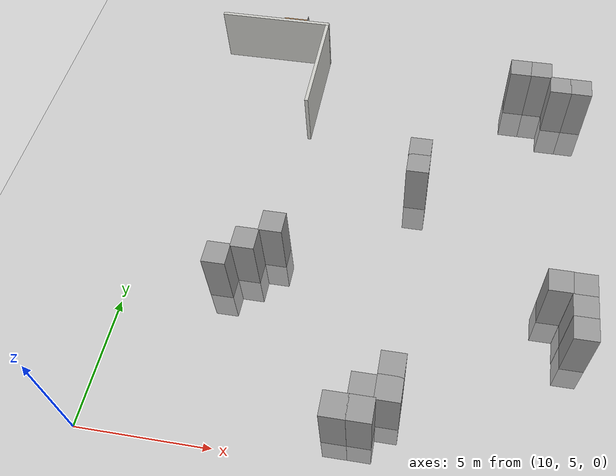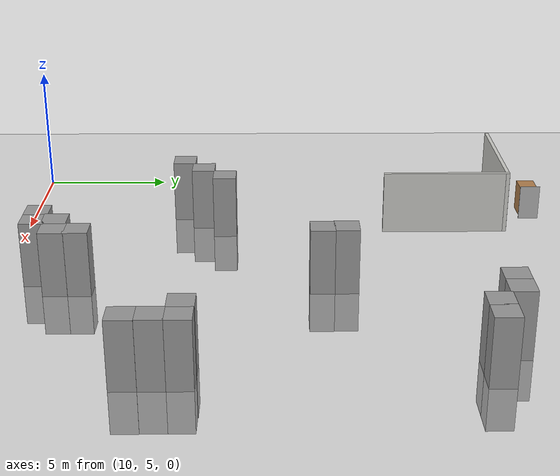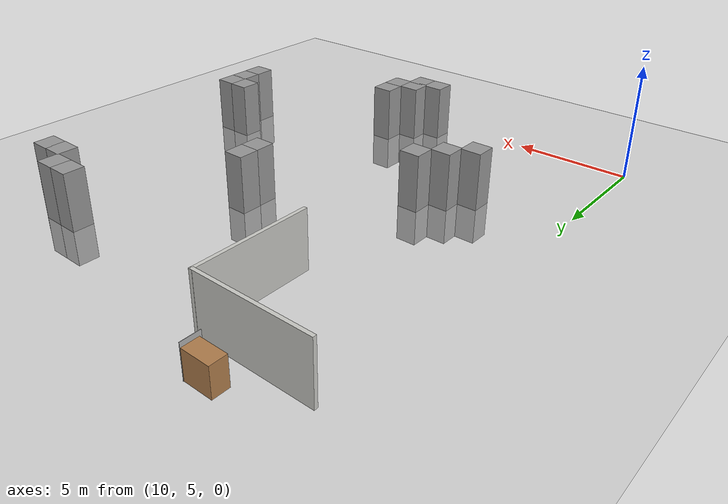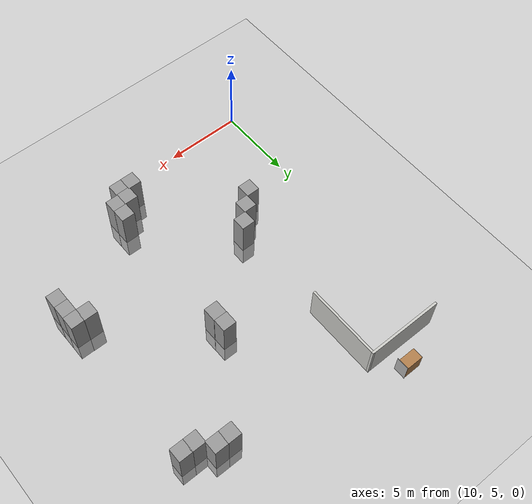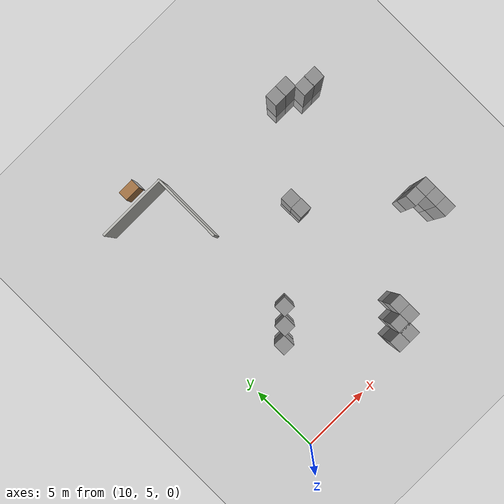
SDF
<sdf version="1.7">
 <world name="default">
  <model name="ground_plane">
   <static>1</static>
   <link name="link">
    <collision name="collision">
     <geometry><plane><normal>0 0 1</normal><size>100 100</size></plane></geometry>
     <surface><friction><ode><mu>100</mu><mu2>50</mu2></ode></friction></surface>
    </collision>
    <visual name="visual">
     <cast_shadows>0</cast_shadows>
     <geometry><plane><normal>0 0 1</normal><size>100 100</size></plane></geometry>
     <material>
      <script><uri>file://media/materials/scripts/gazebo.material</uri><name>Gazebo/Grey</name></script>
     </material>
    </visual>
   </link>
  </model>
  <model name="Untitled_clone">
   <link name="Wall_2">
    <pose>0 -2.2325 0 0 -0 0</pose>
    <visual name="Wall_2_Visual">
     <pose>0 0 1.25 0 -0 0</pose>
     <geometry><box><size>5 0.15 2.5</size></box></geometry>
     <material>
      <script><uri>file://media/materials/scripts/gazebo.material</uri><name>Gazebo/CeilingTiled</name></script>
      <ambient>1 1 1 1</ambient>
      <shader type="pixel"/>
     </material>
     <meta><layer>0</layer></meta>
    </visual>
    <collision name="Wall_2_Collision">
     <pose>0 0 1.25 0 -0 0</pose>
     <geometry><box><size>5 0.15 2.5</size></box></geometry>
     <surface>
      <friction>
       <ode><mu>1</mu><mu2>1</mu2><fdir1>0 0 0</fdir1><slip1>0</slip1><slip2>0</slip2></ode>
       <torsional>
        <coefficient>1</coefficient>
        <patch_radius>0</patch_radius>
        <surface_radius>0</surface_radius>
        <use_patch_radius>1</use_patch_radius>
        <ode><slip>0</slip></ode>
       </torsional>
      </friction>
      <bounce><restitution_coefficient>0</restitution_coefficient><threshold>1e+06</threshold></bounce>
      <contact>
       <collide_without_contact>0</collide_without_contact>
       <collide_without_contact_bitmask>1</collide_without_contact_bitmask>
       <collide_bitmask>1</collide_bitmask>
       <ode>
        <soft_cfm>0</soft_cfm>
        <soft_erp>0.2</soft_erp>
        <kp>1e+13</kp>
        <kd>1</kd>
        <max_vel>0.01</max_vel>
        <min_depth>0</min_depth>
       </ode>
       <bullet>
        <split_impulse>1</split_impulse>
        <split_impulse_penetration_threshold>-0.01</split_impulse_penetration_threshold>
        <soft_cfm>0</soft_cfm>
        <soft_erp>0.2</soft_erp>
        <kp>1e+13</kp>
        <kd>1</kd>
       </bullet>
      </contact>
     </surface>
    </collision>
   </link>
   <link name="Wall_2_clone_clone">
    <pose>2.42084 -4.65277 0 0 -0 1.57</pose>
    <inertial>
     <mass>1</mass>
     <inertia><ixx>1</ixx><ixy>0</ixy><ixz>0</ixz><iyy>1</iyy><iyz>0</iyz><izz>1</izz></inertia>
    </inertial>
    <visual name="Wall_2_Visual">
     <pose>0 0 1.25 0 -0 0</pose>
     <geometry><box><size>5 0.15 2.5</size></box></geometry>
     <material>
      <script><uri>file://media/materials/scripts/gazebo.material</uri><name>Gazebo/CeilingTiled</name></script>
      <ambient>1 1 1 1</ambient>
      <shader type="pixel"><normal_map>__default__</normal_map></shader>
      <diffuse>1 1 1 1</diffuse>
      <specular>0 0 0 1</specular>
      <emissive>0 0 0 1</emissive>
     </material>
     <meta><layer>0</layer></meta>
    </visual>
    <collision name="Wall_2_Collision">
     <pose>0 0 1.25 0 -0 0</pose>
     <geometry><box><size>5 0.15 2.5</size></box></geometry>
     <surface>
      <friction>
       <ode><mu>1</mu><mu2>1</mu2><fdir1>0 0 0</fdir1><slip1>0</slip1><slip2>0</slip2></ode>
       <torsional>
        <coefficient>1</coefficient>
        <patch_radius>0</patch_radius>
        <surface_radius>0</surface_radius>
        <use_patch_radius>1</use_patch_radius>
        <ode><slip>0</slip></ode>
       </torsional>
      </friction>
      <bounce><restitution_coefficient>0</restitution_coefficient><threshold>1e+06</threshold></bounce>
      <contact>
       <collide_without_contact>0</collide_without_contact>
       <collide_without_contact_bitmask>1</collide_without_contact_bitmask>
       <collide_bitmask>1</collide_bitmask>
       <ode>
        <soft_cfm>0</soft_cfm>
        <soft_erp>0.2</soft_erp>
        <kp>1e+13</kp>
        <kd>1</kd>
        <max_vel>0.01</max_vel>
        <min_depth>0</min_depth>
       </ode>
       <bullet>
        <split_impulse>1</split_impulse>
        <split_impulse_penetration_threshold>-0.01</split_impulse_penetration_threshold>
        <soft_cfm>0</soft_cfm>
        <soft_erp>0.2</soft_erp>
        <kp>1e+13</kp>
        <kd>1</kd>
       </bullet>
      </contact>
     </surface>
    </collision>
   </link>
   <static>1</static>
   <pose>13.092 26.4824 0 0 -0 0</pose>
  </model>
  <model name="unit_box_1_clone_0">
   <link name="link">
    <inertial>
     <mass>1</mass>
     <inertia>
      <ixx>0.166667</ixx>
      <ixy>0</ixy>
      <ixz>0</ixz>
      <iyy>0.166667</iyy>
      <iyz>0</iyz>
      <izz>0.166667</izz>
     </inertia>
    </inertial>
    <visual name="visual">
     <geometry><box><size>0.02 0.8 1.4</size></box></geometry>
     <material>
      <script><name>Gazebo/ShiHao</name><uri>file://media/materials/scripts/gazebo.material</uri></script>
      <shader type="pixel"><normal_map>__default__</normal_map></shader>
      <ambient>1 1 1 1</ambient>
      <diffuse>0.7 0.7 0.7 1</diffuse>
      <specular>0.01 0.01 0.01 1</specular>
      <emissive>0 0 0 1</emissive>
     </material>
    </visual>
    <collision name="collision">
     <geometry><box><size>0.02 0.8 1.4</size></box></geometry>
     <surface>
      <friction>
       <ode><mu>1</mu><mu2>1</mu2><fdir1>0 0 0</fdir1><slip1>0</slip1><slip2>0</slip2></ode>
       <torsional>
        <coefficient>1</coefficient>
        <patch_radius>0</patch_radius>
        <surface_radius>0</surface_radius>
        <use_patch_radius>1</use_patch_radius>
        <ode><slip>0</slip></ode>
       </torsional>
      </friction>
      <bounce><restitution_coefficient>0</restitution_coefficient><threshold>1e+06</threshold></bounce>
      <contact>
       <collide_without_contact>0</collide_without_contact>
       <collide_without_contact_bitmask>1</collide_without_contact_bitmask>
       <collide_bitmask>1</collide_bitmask>
       <ode>
        <soft_cfm>0</soft_cfm>
        <soft_erp>0.2</soft_erp>
        <kp>1e+13</kp>
        <kd>1</kd>
        <max_vel>0.01</max_vel>
        <min_depth>0</min_depth>
       </ode>
       <bullet>
        <split_impulse>1</split_impulse>
        <split_impulse_penetration_threshold>-0.01</split_impulse_penetration_threshold>
        <soft_cfm>0</soft_cfm>
        <soft_erp>0.2</soft_erp>
        <kp>1e+13</kp>
        <kd>1</kd>
       </bullet>
      </contact>
     </surface>
    </collision>
   </link>
   <static>0</static>
   <pose>14.2294 25.5003 0.699998 -5e-06 -4e-06 -0.000161</pose>
  </model>
  <model name="unit_box_0_clone">
   <link name="link">
    <inertial>
     <mass>1</mass>
     <inertia>
      <ixx>0.166667</ixx>
      <ixy>0</ixy>
      <ixz>0</ixz>
      <iyy>0.166667</iyy>
      <iyz>0</iyz>
      <izz>0.166667</izz>
     </inertia>
    </inertial>
    <visual name="visual">
     <geometry><box><size>1.2 0.7 1.2</size></box></geometry>
     <material>
      <script><uri>file://media/materials/scripts/gazebo.material</uri><name>Gazebo/Wood</name></script>
      <shader type="pixel"><normal_map>__default__</normal_map></shader>
      <ambient>1 1 1 1</ambient>
      <diffuse>0.7 0.7 0.7 1</diffuse>
      <specular>0.01 0.01 0.01 1</specular>
      <emissive>0 0 0 1</emissive>
     </material>
    </visual>
    <collision name="collision">
     <geometry><box><size>1.2 0.7 1.2</size></box></geometry>
     <surface>
      <friction>
       <ode><mu>1</mu><mu2>1</mu2><fdir1>0 0 0</fdir1><slip1>0</slip1><slip2>0</slip2></ode>
       <torsional>
        <coefficient>1</coefficient>
        <patch_radius>0</patch_radius>
        <surface_radius>0</surface_radius>
        <use_patch_radius>1</use_patch_radius>
        <ode><slip>0</slip></ode>
       </torsional>
      </friction>
      <bounce><restitution_coefficient>0</restitution_coefficient><threshold>1e+06</threshold></bounce>
      <contact>
       <collide_without_contact>0</collide_without_contact>
       <collide_without_contact_bitmask>1</collide_without_contact_bitmask>
       <collide_bitmask>1</collide_bitmask>
       <ode>
        <soft_cfm>0</soft_cfm>
        <soft_erp>0.2</soft_erp>
        <kp>1e+13</kp>
        <kd>1</kd>
        <max_vel>0.01</max_vel>
        <min_depth>0</min_depth>
       </ode>
       <bullet>
        <split_impulse>1</split_impulse>
        <split_impulse_penetration_threshold>-0.01</split_impulse_penetration_threshold>
        <soft_cfm>0</soft_cfm>
        <soft_erp>0.2</soft_erp>
        <kp>1e+13</kp>
        <kd>1</kd>
       </bullet>
      </contact>
     </surface>
    </collision>
   </link>
   <static>0</static>
   <pose>13.619 25.5346 0.600002 0 3e-06 -0.000144</pose>
  </model>
  <model name="unit_box">
   <link name="link_clone_0_clone_clone_3_clone_2_clone_1_clone">
    <inertial>
     <mass>1</mass>
     <inertia>
      <ixx>0.166667</ixx>
      <ixy>0</ixy>
      <ixz>0</ixz>
      <iyy>0.166667</iyy>
      <iyz>0</iyz>
      <izz>0.166667</izz>
     </inertia>
    </inertial>
    <pose>19.5699 23.4812 0 0 -0 0</pose>
    <visual name="visual">
     <geometry><box><size>0.9 0.9 4</size></box></geometry>
     <material>
      <script><name>Gazebo/Grey</name><uri>file://media/materials/scripts/gazebo.material</uri></script>
      <shader type="pixel"><normal_map>__default__</normal_map></shader>
      <ambient>0.3 0.3 0.3 1</ambient>
      <diffuse>0.7 0.7 0.7 1</diffuse>
      <specular>0.01 0.01 0.01 1</specular>
      <emissive>0 0 0 1</emissive>
     </material>
    </visual>
    <collision name="collision">
     <geometry><box><size>0.9 0.9 4</size></box></geometry>
     <surface>
      <friction>
       <ode><mu>1</mu><mu2>1</mu2><fdir1>0 0 0</fdir1><slip1>0</slip1><slip2>0</slip2></ode>
       <torsional>
        <coefficient>1</coefficient>
        <patch_radius>0</patch_radius>
        <surface_radius>0</surface_radius>
        <use_patch_radius>1</use_patch_radius>
        <ode><slip>0</slip></ode>
       </torsional>
      </friction>
      <bounce><restitution_coefficient>0</restitution_coefficient><threshold>1e+06</threshold></bounce>
      <contact>
       <collide_without_contact>0</collide_without_contact>
       <collide_without_contact_bitmask>1</collide_without_contact_bitmask>
       <collide_bitmask>1</collide_bitmask>
       <ode>
        <soft_cfm>0</soft_cfm>
        <soft_erp>0.2</soft_erp>
        <kp>1e+13</kp>
        <kd>1</kd>
        <max_vel>0.01</max_vel>
        <min_depth>0</min_depth>
       </ode>
       <bullet>
        <split_impulse>1</split_impulse>
        <split_impulse_penetration_threshold>-0.01</split_impulse_penetration_threshold>
        <soft_cfm>0</soft_cfm>
        <soft_erp>0.2</soft_erp>
        <kp>1e+13</kp>
        <kd>1</kd>
       </bullet>
      </contact>
     </surface>
    </collision>
   </link>
   <link name="link_clone_0_clone_clone_3_clone_2_clone_1_clone_0">
    <inertial>
     <mass>1</mass>
     <inertia>
      <ixx>0.166667</ixx>
      <ixy>0</ixy>
      <ixz>0</ixz>
      <iyy>0.166667</iyy>
      <iyz>0</iyz>
      <izz>0.166667</izz>
     </inertia>
    </inertial>
    <pose>18.7181 23.4797 0 0 -0 0</pose>
    <visual name="visual">
     <geometry><box><size>0.9 0.9 4</size></box></geometry>
     <material>
      <script><name>Gazebo/Grey</name><uri>file://media/materials/scripts/gazebo.material</uri></script>
      <shader type="pixel"><normal_map>__default__</normal_map></shader>
      <ambient>0.3 0.3 0.3 1</ambient>
      <diffuse>0.7 0.7 0.7 1</diffuse>
      <specular>0.01 0.01 0.01 1</specular>
      <emissive>0 0 0 1</emissive>
     </material>
    </visual>
    <collision name="collision">
     <geometry><box><size>0.9 0.9 4</size></box></geometry>
     <surface>
      <friction>
       <ode><mu>1</mu><mu2>1</mu2><fdir1>0 0 0</fdir1><slip1>0</slip1><slip2>0</slip2></ode>
       <torsional>
        <coefficient>1</coefficient>
        <patch_radius>0</patch_radius>
        <surface_radius>0</surface_radius>
        <use_patch_radius>1</use_patch_radius>
        <ode><slip>0</slip></ode>
       </torsional>
      </friction>
      <bounce><restitution_coefficient>0</restitution_coefficient><threshold>1e+06</threshold></bounce>
      <contact>
       <collide_without_contact>0</collide_without_contact>
       <collide_without_contact_bitmask>1</collide_without_contact_bitmask>
       <collide_bitmask>1</collide_bitmask>
       <ode>
        <soft_cfm>0</soft_cfm>
        <soft_erp>0.2</soft_erp>
        <kp>1e+13</kp>
        <kd>1</kd>
        <max_vel>0.01</max_vel>
        <min_depth>0</min_depth>
       </ode>
       <bullet>
        <split_impulse>1</split_impulse>
        <split_impulse_penetration_threshold>-0.01</split_impulse_penetration_threshold>
        <soft_cfm>0</soft_cfm>
        <soft_erp>0.2</soft_erp>
        <kp>1e+13</kp>
        <kd>1</kd>
       </bullet>
      </contact>
     </surface>
    </collision>
   </link>
   <link name="link_clone_0_clone_clone_3_clone_2_clone_1_clone_1">
    <inertial>
     <mass>1</mass>
     <inertia>
      <ixx>0.166667</ixx>
      <ixy>0</ixy>
      <ixz>0</ixz>
      <iyy>0.166667</iyy>
      <iyz>0</iyz>
      <izz>0.166667</izz>
     </inertia>
    </inertial>
    <pose>17.8601 24.3072 0 0 -0 0</pose>
    <visual name="visual">
     <geometry><box><size>0.9 0.9 4</size></box></geometry>
     <material>
      <script><name>Gazebo/Grey</name><uri>file://media/materials/scripts/gazebo.material</uri></script>
      <shader type="pixel"><normal_map>__default__</normal_map></shader>
      <ambient>0.3 0.3 0.3 1</ambient>
      <diffuse>0.7 0.7 0.7 1</diffuse>
      <specular>0.01 0.01 0.01 1</specular>
      <emissive>0 0 0 1</emissive>
     </material>
    </visual>
    <collision name="collision">
     <geometry><box><size>0.9 0.9 4</size></box></geometry>
     <surface>
      <friction>
       <ode><mu>1</mu><mu2>1</mu2><fdir1>0 0 0</fdir1><slip1>0</slip1><slip2>0</slip2></ode>
       <torsional>
        <coefficient>1</coefficient>
        <patch_radius>0</patch_radius>
        <surface_radius>0</surface_radius>
        <use_patch_radius>1</use_patch_radius>
        <ode><slip>0</slip></ode>
       </torsional>
      </friction>
      <bounce><restitution_coefficient>0</restitution_coefficient><threshold>1e+06</threshold></bounce>
      <contact>
       <collide_without_contact>0</collide_without_contact>
       <collide_without_contact_bitmask>1</collide_without_contact_bitmask>
       <collide_bitmask>1</collide_bitmask>
       <ode>
        <soft_cfm>0</soft_cfm>
        <soft_erp>0.2</soft_erp>
        <kp>1e+13</kp>
        <kd>1</kd>
        <max_vel>0.01</max_vel>
        <min_depth>0</min_depth>
       </ode>
       <bullet>
        <split_impulse>1</split_impulse>
        <split_impulse_penetration_threshold>-0.01</split_impulse_penetration_threshold>
        <soft_cfm>0</soft_cfm>
        <soft_erp>0.2</soft_erp>
        <kp>1e+13</kp>
        <kd>1</kd>
       </bullet>
      </contact>
     </surface>
    </collision>
   </link>
   <link name="link_clone_0_clone_clone_3_clone_2_clone_1_clone_2">
    <inertial>
     <mass>1</mass>
     <inertia>
      <ixx>0.166667</ixx>
      <ixy>0</ixy>
      <ixz>0</ixz>
      <iyy>0.166667</iyy>
      <iyz>0</iyz>
      <izz>0.166667</izz>
     </inertia>
    </inertial>
    <pose>16.9798 24.307 0 0 -0 0</pose>
    <visual name="visual">
     <geometry><box><size>0.9 0.9 4</size></box></geometry>
     <material>
      <script><name>Gazebo/Grey</name><uri>file://media/materials/scripts/gazebo.material</uri></script>
      <shader type="pixel"><normal_map>__default__</normal_map></shader>
      <ambient>0.3 0.3 0.3 1</ambient>
      <diffuse>0.7 0.7 0.7 1</diffuse>
      <specular>0.01 0.01 0.01 1</specular>
      <emissive>0 0 0 1</emissive>
     </material>
    </visual>
    <collision name="collision">
     <geometry><box><size>0.9 0.9 4</size></box></geometry>
     <surface>
      <friction>
       <ode><mu>1</mu><mu2>1</mu2><fdir1>0 0 0</fdir1><slip1>0</slip1><slip2>0</slip2></ode>
       <torsional>
        <coefficient>1</coefficient>
        <patch_radius>0</patch_radius>
        <surface_radius>0</surface_radius>
        <use_patch_radius>1</use_patch_radius>
        <ode><slip>0</slip></ode>
       </torsional>
      </friction>
      <bounce><restitution_coefficient>0</restitution_coefficient><threshold>1e+06</threshold></bounce>
      <contact>
       <collide_without_contact>0</collide_without_contact>
       <collide_without_contact_bitmask>1</collide_without_contact_bitmask>
       <collide_bitmask>1</collide_bitmask>
       <ode>
        <soft_cfm>0</soft_cfm>
        <soft_erp>0.2</soft_erp>
        <kp>1e+13</kp>
        <kd>1</kd>
        <max_vel>0.01</max_vel>
        <min_depth>0</min_depth>
       </ode>
       <bullet>
        <split_impulse>1</split_impulse>
        <split_impulse_penetration_threshold>-0.01</split_impulse_penetration_threshold>
        <soft_cfm>0</soft_cfm>
        <soft_erp>0.2</soft_erp>
        <kp>1e+13</kp>
        <kd>1</kd>
       </bullet>
      </contact>
     </surface>
    </collision>
   </link>
   <link name="link_clone_0_clone_clone_3_clone_2_clone_32">
    <inertial>
     <mass>1</mass>
     <inertia>
      <ixx>0.166667</ixx>
      <ixy>0</ixy>
      <ixz>0</ixz>
      <iyy>0.166667</iyy>
      <iyz>0</iyz>
      <izz>0.166667</izz>
     </inertia>
    </inertial>
    <pose>19.6438 11.8163 0 0 -0 0</pose>
    <visual name="visual">
     <geometry><box><size>0.9 0.9 4</size></box></geometry>
     <material>
      <script><name>Gazebo/Grey</name><uri>file://media/materials/scripts/gazebo.material</uri></script>
      <shader type="pixel"><normal_map>__default__</normal_map></shader>
      <ambient>0.3 0.3 0.3 1</ambient>
      <diffuse>0.7 0.7 0.7 1</diffuse>
      <specular>0.01 0.01 0.01 1</specular>
      <emissive>0 0 0 1</emissive>
     </material>
    </visual>
    <collision name="collision">
     <geometry><box><size>0.9 0.9 4</size></box></geometry>
     <surface>
      <friction>
       <ode><mu>1</mu><mu2>1</mu2><fdir1>0 0 0</fdir1><slip1>0</slip1><slip2>0</slip2></ode>
       <torsional>
        <coefficient>1</coefficient>
        <patch_radius>0</patch_radius>
        <surface_radius>0</surface_radius>
        <use_patch_radius>1</use_patch_radius>
        <ode><slip>0</slip></ode>
       </torsional>
      </friction>
      <bounce><restitution_coefficient>0</restitution_coefficient><threshold>1e+06</threshold></bounce>
      <contact>
       <collide_without_contact>0</collide_without_contact>
       <collide_without_contact_bitmask>1</collide_without_contact_bitmask>
       <collide_bitmask>1</collide_bitmask>
       <ode>
        <soft_cfm>0</soft_cfm>
        <soft_erp>0.2</soft_erp>
        <kp>1e+13</kp>
        <kd>1</kd>
        <max_vel>0.01</max_vel>
        <min_depth>0</min_depth>
       </ode>
       <bullet>
        <split_impulse>1</split_impulse>
        <split_impulse_penetration_threshold>-0.01</split_impulse_penetration_threshold>
        <soft_cfm>0</soft_cfm>
        <soft_erp>0.2</soft_erp>
        <kp>1e+13</kp>
        <kd>1</kd>
       </bullet>
      </contact>
     </surface>
    </collision>
   </link>
   <link name="link_clone_0_clone_clone_3_clone_2_clone_33">
    <inertial>
     <mass>1</mass>
     <inertia>
      <ixx>0.166667</ixx>
      <ixy>0</ixy>
      <ixz>0</ixz>
      <iyy>0.166667</iyy>
      <iyz>0</iyz>
      <izz>0.166667</izz>
     </inertia>
    </inertial>
    <pose>11.5534 7.77866 0 0 -0 0</pose>
    <visual name="visual">
     <geometry><box><size>0.9 0.9 4</size></box></geometry>
     <material>
      <script><name>Gazebo/Grey</name><uri>file://media/materials/scripts/gazebo.material</uri></script>
      <shader type="pixel"><normal_map>__default__</normal_map></shader>
      <ambient>0.3 0.3 0.3 1</ambient>
      <diffuse>0.7 0.7 0.7 1</diffuse>
      <specular>0.01 0.01 0.01 1</specular>
      <emissive>0 0 0 1</emissive>
     </material>
    </visual>
    <collision name="collision">
     <geometry><box><size>0.9 0.9 4</size></box></geometry>
     <surface>
      <friction>
       <ode><mu>1</mu><mu2>1</mu2><fdir1>0 0 0</fdir1><slip1>0</slip1><slip2>0</slip2></ode>
       <torsional>
        <coefficient>1</coefficient>
        <patch_radius>0</patch_radius>
        <surface_radius>0</surface_radius>
        <use_patch_radius>1</use_patch_radius>
        <ode><slip>0</slip></ode>
       </torsional>
      </friction>
      <bounce><restitution_coefficient>0</restitution_coefficient><threshold>1e+06</threshold></bounce>
      <contact>
       <collide_without_contact>0</collide_without_contact>
       <collide_without_contact_bitmask>1</collide_without_contact_bitmask>
       <collide_bitmask>1</collide_bitmask>
       <ode>
        <soft_cfm>0</soft_cfm>
        <soft_erp>0.2</soft_erp>
        <kp>1e+13</kp>
        <kd>1</kd>
        <max_vel>0.01</max_vel>
        <min_depth>0</min_depth>
       </ode>
       <bullet>
        <split_impulse>1</split_impulse>
        <split_impulse_penetration_threshold>-0.01</split_impulse_penetration_threshold>
        <soft_cfm>0</soft_cfm>
        <soft_erp>0.2</soft_erp>
        <kp>1e+13</kp>
        <kd>1</kd>
       </bullet>
      </contact>
     </surface>
    </collision>
   </link>
   <link name="link_clone_0_clone_clone_3_clone_2_clone_34">
    <inertial>
     <mass>1</mass>
     <inertia>
      <ixx>0.166667</ixx>
      <ixy>0</ixy>
      <ixz>0</ixz>
      <iyy>0.166667</iyy>
      <iyz>0</iyz>
      <izz>0.166667</izz>
     </inertia>
    </inertial>
    <pose>12.4188 7.78202 0 0 -0 0</pose>
    <visual name="visual">
     <geometry><box><size>0.9 0.9 4</size></box></geometry>
     <material>
      <script><name>Gazebo/Grey</name><uri>file://media/materials/scripts/gazebo.material</uri></script>
      <shader type="pixel"><normal_map>__default__</normal_map></shader>
      <ambient>0.3 0.3 0.3 1</ambient>
      <diffuse>0.7 0.7 0.7 1</diffuse>
      <specular>0.01 0.01 0.01 1</specular>
      <emissive>0 0 0 1</emissive>
     </material>
    </visual>
    <collision name="collision">
     <geometry><box><size>0.9 0.9 4</size></box></geometry>
     <surface>
      <friction>
       <ode><mu>1</mu><mu2>1</mu2><fdir1>0 0 0</fdir1><slip1>0</slip1><slip2>0</slip2></ode>
       <torsional>
        <coefficient>1</coefficient>
        <patch_radius>0</patch_radius>
        <surface_radius>0</surface_radius>
        <use_patch_radius>1</use_patch_radius>
        <ode><slip>0</slip></ode>
       </torsional>
      </friction>
      <bounce><restitution_coefficient>0</restitution_coefficient><threshold>1e+06</threshold></bounce>
      <contact>
       <collide_without_contact>0</collide_without_contact>
       <collide_without_contact_bitmask>1</collide_without_contact_bitmask>
       <collide_bitmask>1</collide_bitmask>
       <ode>
        <soft_cfm>0</soft_cfm>
        <soft_erp>0.2</soft_erp>
        <kp>1e+13</kp>
        <kd>1</kd>
        <max_vel>0.01</max_vel>
        <min_depth>0</min_depth>
       </ode>
       <bullet>
        <split_impulse>1</split_impulse>
        <split_impulse_penetration_threshold>-0.01</split_impulse_penetration_threshold>
        <soft_cfm>0</soft_cfm>
        <soft_erp>0.2</soft_erp>
        <kp>1e+13</kp>
        <kd>1</kd>
       </bullet>
      </contact>
     </surface>
    </collision>
   </link>
   <link name="link_clone_0_clone_clone_3_clone_2_clone_36">
    <inertial>
     <mass>1</mass>
     <inertia>
      <ixx>0.166667</ixx>
      <ixy>0</ixy>
      <ixz>0</ixz>
      <iyy>0.166667</iyy>
      <iyz>0</iyz>
      <izz>0.166667</izz>
     </inertia>
    </inertial>
    <pose>13.2399 8.61339 0 0 -0 0</pose>
    <visual name="visual">
     <geometry><box><size>0.9 0.9 4</size></box></geometry>
     <material>
      <script><name>Gazebo/Grey</name><uri>file://media/materials/scripts/gazebo.material</uri></script>
      <shader type="pixel"><normal_map>__default__</normal_map></shader>
      <ambient>0.3 0.3 0.3 1</ambient>
      <diffuse>0.7 0.7 0.7 1</diffuse>
      <specular>0.01 0.01 0.01 1</specular>
      <emissive>0 0 0 1</emissive>
     </material>
    </visual>
    <collision name="collision">
     <geometry><box><size>0.9 0.9 4</size></box></geometry>
     <surface>
      <friction>
       <ode><mu>1</mu><mu2>1</mu2><fdir1>0 0 0</fdir1><slip1>0</slip1><slip2>0</slip2></ode>
       <torsional>
        <coefficient>1</coefficient>
        <patch_radius>0</patch_radius>
        <surface_radius>0</surface_radius>
        <use_patch_radius>1</use_patch_radius>
        <ode><slip>0</slip></ode>
       </torsional>
      </friction>
      <bounce><restitution_coefficient>0</restitution_coefficient><threshold>1e+06</threshold></bounce>
      <contact>
       <collide_without_contact>0</collide_without_contact>
       <collide_without_contact_bitmask>1</collide_without_contact_bitmask>
       <collide_bitmask>1</collide_bitmask>
       <ode>
        <soft_cfm>0</soft_cfm>
        <soft_erp>0.2</soft_erp>
        <kp>1e+13</kp>
        <kd>1</kd>
        <max_vel>0.01</max_vel>
        <min_depth>0</min_depth>
       </ode>
       <bullet>
        <split_impulse>1</split_impulse>
        <split_impulse_penetration_threshold>-0.01</split_impulse_penetration_threshold>
        <soft_cfm>0</soft_cfm>
        <soft_erp>0.2</soft_erp>
        <kp>1e+13</kp>
        <kd>1</kd>
       </bullet>
      </contact>
     </surface>
    </collision>
   </link>
   <link name="link_clone_0_clone_clone_3_clone_2_clone_37">
    <inertial>
     <mass>1</mass>
     <inertia>
      <ixx>0.166667</ixx>
      <ixy>0</ixy>
      <ixz>0</ixz>
      <iyy>0.166667</iyy>
      <iyz>0</iyz>
      <izz>0.166667</izz>
     </inertia>
    </inertial>
    <pose>13.2375 9.46863 0 0 -0 0</pose>
    <visual name="visual">
     <geometry><box><size>0.9 0.9 4</size></box></geometry>
     <material>
      <script><name>Gazebo/Grey</name><uri>file://media/materials/scripts/gazebo.material</uri></script>
      <shader type="pixel"><normal_map>__default__</normal_map></shader>
      <ambient>0.3 0.3 0.3 1</ambient>
      <diffuse>0.7 0.7 0.7 1</diffuse>
      <specular>0.01 0.01 0.01 1</specular>
      <emissive>0 0 0 1</emissive>
     </material>
    </visual>
    <collision name="collision">
     <geometry><box><size>0.9 0.9 4</size></box></geometry>
     <surface>
      <friction>
       <ode><mu>1</mu><mu2>1</mu2><fdir1>0 0 0</fdir1><slip1>0</slip1><slip2>0</slip2></ode>
       <torsional>
        <coefficient>1</coefficient>
        <patch_radius>0</patch_radius>
        <surface_radius>0</surface_radius>
        <use_patch_radius>1</use_patch_radius>
        <ode><slip>0</slip></ode>
       </torsional>
      </friction>
      <bounce><restitution_coefficient>0</restitution_coefficient><threshold>1e+06</threshold></bounce>
      <contact>
       <collide_without_contact>0</collide_without_contact>
       <collide_without_contact_bitmask>1</collide_without_contact_bitmask>
       <collide_bitmask>1</collide_bitmask>
       <ode>
        <soft_cfm>0</soft_cfm>
        <soft_erp>0.2</soft_erp>
        <kp>1e+13</kp>
        <kd>1</kd>
        <max_vel>0.01</max_vel>
        <min_depth>0</min_depth>
       </ode>
       <bullet>
        <split_impulse>1</split_impulse>
        <split_impulse_penetration_threshold>-0.01</split_impulse_penetration_threshold>
        <soft_cfm>0</soft_cfm>
        <soft_erp>0.2</soft_erp>
        <kp>1e+13</kp>
        <kd>1</kd>
       </bullet>
      </contact>
     </surface>
    </collision>
   </link>
   <link name="link_clone_0_clone_clone_3_clone_2_clone_38">
    <inertial>
     <mass>1</mass>
     <inertia>
      <ixx>0.166667</ixx>
      <ixy>0</ixy>
      <ixz>0</ixz>
      <iyy>0.166667</iyy>
      <iyz>0</iyz>
      <izz>0.166667</izz>
     </inertia>
    </inertial>
    <pose>12.3724 8.56503 0 0 -0 0</pose>
    <visual name="visual">
     <geometry><box><size>0.9 0.9 4</size></box></geometry>
     <material>
      <script><name>Gazebo/Grey</name><uri>file://media/materials/scripts/gazebo.material</uri></script>
      <shader type="pixel"><normal_map>__default__</normal_map></shader>
      <ambient>0.3 0.3 0.3 1</ambient>
      <diffuse>0.7 0.7 0.7 1</diffuse>
      <specular>0.01 0.01 0.01 1</specular>
      <emissive>0 0 0 1</emissive>
     </material>
    </visual>
    <collision name="collision">
     <geometry><box><size>0.9 0.9 4</size></box></geometry>
     <surface>
      <friction>
       <ode><mu>1</mu><mu2>1</mu2><fdir1>0 0 0</fdir1><slip1>0</slip1><slip2>0</slip2></ode>
       <torsional>
        <coefficient>1</coefficient>
        <patch_radius>0</patch_radius>
        <surface_radius>0</surface_radius>
        <use_patch_radius>1</use_patch_radius>
        <ode><slip>0</slip></ode>
       </torsional>
      </friction>
      <bounce><restitution_coefficient>0</restitution_coefficient><threshold>1e+06</threshold></bounce>
      <contact>
       <collide_without_contact>0</collide_without_contact>
       <collide_without_contact_bitmask>1</collide_without_contact_bitmask>
       <collide_bitmask>1</collide_bitmask>
       <ode>
        <soft_cfm>0</soft_cfm>
        <soft_erp>0.2</soft_erp>
        <kp>1e+13</kp>
        <kd>1</kd>
        <max_vel>0.01</max_vel>
        <min_depth>0</min_depth>
       </ode>
       <bullet>
        <split_impulse>1</split_impulse>
        <split_impulse_penetration_threshold>-0.01</split_impulse_penetration_threshold>
        <soft_cfm>0</soft_cfm>
        <soft_erp>0.2</soft_erp>
        <kp>1e+13</kp>
        <kd>1</kd>
       </bullet>
      </contact>
     </surface>
    </collision>
   </link>
   <link name="link_clone_0_clone_clone_3_clone_2_clone_39">
    <inertial>
     <mass>1</mass>
     <inertia>
      <ixx>0.166667</ixx>
      <ixy>0</ixy>
      <ixz>0</ixz>
      <iyy>0.166667</iyy>
      <iyz>0</iyz>
      <izz>0.166667</izz>
     </inertia>
    </inertial>
    <pose>19.6362 12.7063 0 0 -0 0</pose>
    <visual name="visual">
     <geometry><box><size>0.9 0.9 4</size></box></geometry>
     <material>
      <script><name>Gazebo/Grey</name><uri>file://media/materials/scripts/gazebo.material</uri></script>
      <shader type="pixel"><normal_map>__default__</normal_map></shader>
      <ambient>0.3 0.3 0.3 1</ambient>
      <diffuse>0.7 0.7 0.7 1</diffuse>
      <specular>0.01 0.01 0.01 1</specular>
      <emissive>0 0 0 1</emissive>
     </material>
    </visual>
    <collision name="collision">
     <geometry><box><size>0.9 0.9 4</size></box></geometry>
     <surface>
      <friction>
       <ode><mu>1</mu><mu2>1</mu2><fdir1>0 0 0</fdir1><slip1>0</slip1><slip2>0</slip2></ode>
       <torsional>
        <coefficient>1</coefficient>
        <patch_radius>0</patch_radius>
        <surface_radius>0</surface_radius>
        <use_patch_radius>1</use_patch_radius>
        <ode><slip>0</slip></ode>
       </torsional>
      </friction>
      <bounce><restitution_coefficient>0</restitution_coefficient><threshold>1e+06</threshold></bounce>
      <contact>
       <collide_without_contact>0</collide_without_contact>
       <collide_without_contact_bitmask>1</collide_without_contact_bitmask>
       <collide_bitmask>1</collide_bitmask>
       <ode>
        <soft_cfm>0</soft_cfm>
        <soft_erp>0.2</soft_erp>
        <kp>1e+13</kp>
        <kd>1</kd>
        <max_vel>0.01</max_vel>
        <min_depth>0</min_depth>
       </ode>
       <bullet>
        <split_impulse>1</split_impulse>
        <split_impulse_penetration_threshold>-0.01</split_impulse_penetration_threshold>
        <soft_cfm>0</soft_cfm>
        <soft_erp>0.2</soft_erp>
        <kp>1e+13</kp>
        <kd>1</kd>
       </bullet>
      </contact>
     </surface>
    </collision>
   </link>
   <link name="link_clone_0_clone_clone_3_clone_2_clone_40">
    <inertial>
     <mass>1</mass>
     <inertia>
      <ixx>0.166667</ixx>
      <ixy>0</ixy>
      <ixz>0</ixz>
      <iyy>0.166667</iyy>
      <iyz>0</iyz>
      <izz>0.166667</izz>
     </inertia>
    </inertial>
    <pose>19.6349 13.5789 0 0 -0 0</pose>
    <visual name="visual">
     <geometry><box><size>0.9 0.9 4</size></box></geometry>
     <material>
      <script><name>Gazebo/Grey</name><uri>file://media/materials/scripts/gazebo.material</uri></script>
      <shader type="pixel"><normal_map>__default__</normal_map></shader>
      <ambient>0.3 0.3 0.3 1</ambient>
      <diffuse>0.7 0.7 0.7 1</diffuse>
      <specular>0.01 0.01 0.01 1</specular>
      <emissive>0 0 0 1</emissive>
     </material>
    </visual>
    <collision name="collision">
     <geometry><box><size>0.9 0.9 4</size></box></geometry>
     <surface>
      <friction>
       <ode><mu>1</mu><mu2>1</mu2><fdir1>0 0 0</fdir1><slip1>0</slip1><slip2>0</slip2></ode>
       <torsional>
        <coefficient>1</coefficient>
        <patch_radius>0</patch_radius>
        <surface_radius>0</surface_radius>
        <use_patch_radius>1</use_patch_radius>
        <ode><slip>0</slip></ode>
       </torsional>
      </friction>
      <bounce><restitution_coefficient>0</restitution_coefficient><threshold>1e+06</threshold></bounce>
      <contact>
       <collide_without_contact>0</collide_without_contact>
       <collide_without_contact_bitmask>1</collide_without_contact_bitmask>
       <collide_bitmask>1</collide_bitmask>
       <ode>
        <soft_cfm>0</soft_cfm>
        <soft_erp>0.2</soft_erp>
        <kp>1e+13</kp>
        <kd>1</kd>
        <max_vel>0.01</max_vel>
        <min_depth>0</min_depth>
       </ode>
       <bullet>
        <split_impulse>1</split_impulse>
        <split_impulse_penetration_threshold>-0.01</split_impulse_penetration_threshold>
        <soft_cfm>0</soft_cfm>
        <soft_erp>0.2</soft_erp>
        <kp>1e+13</kp>
        <kd>1</kd>
       </bullet>
      </contact>
     </surface>
    </collision>
   </link>
   <link name="link_clone_0_clone_clone_3_clone_2_clone_42">
    <inertial>
     <mass>1</mass>
     <inertia>
      <ixx>0.166667</ixx>
      <ixy>0</ixy>
      <ixz>0</ixz>
      <iyy>0.166667</iyy>
      <iyz>0</iyz>
      <izz>0.166667</izz>
     </inertia>
    </inertial>
    <pose>18.7644 13.5939 0 0 -0 0</pose>
    <visual name="visual">
     <geometry><box><size>0.9 0.9 4</size></box></geometry>
     <material>
      <script><name>Gazebo/Grey</name><uri>file://media/materials/scripts/gazebo.material</uri></script>
      <shader type="pixel"><normal_map>__default__</normal_map></shader>
      <ambient>0.3 0.3 0.3 1</ambient>
      <diffuse>0.7 0.7 0.7 1</diffuse>
      <specular>0.01 0.01 0.01 1</specular>
      <emissive>0 0 0 1</emissive>
     </material>
    </visual>
    <collision name="collision">
     <geometry><box><size>0.9 0.9 4</size></box></geometry>
     <surface>
      <friction>
       <ode><mu>1</mu><mu2>1</mu2><fdir1>0 0 0</fdir1><slip1>0</slip1><slip2>0</slip2></ode>
       <torsional>
        <coefficient>1</coefficient>
        <patch_radius>0</patch_radius>
        <surface_radius>0</surface_radius>
        <use_patch_radius>1</use_patch_radius>
        <ode><slip>0</slip></ode>
       </torsional>
      </friction>
      <bounce><restitution_coefficient>0</restitution_coefficient><threshold>1e+06</threshold></bounce>
      <contact>
       <collide_without_contact>0</collide_without_contact>
       <collide_without_contact_bitmask>1</collide_without_contact_bitmask>
       <collide_bitmask>1</collide_bitmask>
       <ode>
        <soft_cfm>0</soft_cfm>
        <soft_erp>0.2</soft_erp>
        <kp>1e+13</kp>
        <kd>1</kd>
        <max_vel>0.01</max_vel>
        <min_depth>0</min_depth>
       </ode>
       <bullet>
        <split_impulse>1</split_impulse>
        <split_impulse_penetration_threshold>-0.01</split_impulse_penetration_threshold>
        <soft_cfm>0</soft_cfm>
        <soft_erp>0.2</soft_erp>
        <kp>1e+13</kp>
        <kd>1</kd>
       </bullet>
      </contact>
     </surface>
    </collision>
   </link>
   <link name="link_clone_0_clone_clone_3_clone_2_clone_44">
    <inertial>
     <mass>1</mass>
     <inertia>
      <ixx>0.166667</ixx>
      <ixy>0</ixy>
      <ixz>0</ixz>
      <iyy>0.166667</iyy>
      <iyz>0</iyz>
      <izz>0.166667</izz>
     </inertia>
    </inertial>
    <pose>13.1153 18.1869 0 0 -0 0</pose>
    <visual name="visual">
     <geometry><box><size>0.9 0.9 4</size></box></geometry>
     <material>
      <script><name>Gazebo/Grey</name><uri>file://media/materials/scripts/gazebo.material</uri></script>
      <shader type="pixel"><normal_map>__default__</normal_map></shader>
      <ambient>0.3 0.3 0.3 1</ambient>
      <diffuse>0.7 0.7 0.7 1</diffuse>
      <specular>0.01 0.01 0.01 1</specular>
      <emissive>0 0 0 1</emissive>
     </material>
    </visual>
    <collision name="collision">
     <geometry><box><size>0.9 0.9 4</size></box></geometry>
     <surface>
      <friction>
       <ode><mu>1</mu><mu2>1</mu2><fdir1>0 0 0</fdir1><slip1>0</slip1><slip2>0</slip2></ode>
       <torsional>
        <coefficient>1</coefficient>
        <patch_radius>0</patch_radius>
        <surface_radius>0</surface_radius>
        <use_patch_radius>1</use_patch_radius>
        <ode><slip>0</slip></ode>
       </torsional>
      </friction>
      <bounce><restitution_coefficient>0</restitution_coefficient><threshold>1e+06</threshold></bounce>
      <contact>
       <collide_without_contact>0</collide_without_contact>
       <collide_without_contact_bitmask>1</collide_without_contact_bitmask>
       <collide_bitmask>1</collide_bitmask>
       <ode>
        <soft_cfm>0</soft_cfm>
        <soft_erp>0.2</soft_erp>
        <kp>1e+13</kp>
        <kd>1</kd>
        <max_vel>0.01</max_vel>
        <min_depth>0</min_depth>
       </ode>
       <bullet>
        <split_impulse>1</split_impulse>
        <split_impulse_penetration_threshold>-0.01</split_impulse_penetration_threshold>
        <soft_cfm>0</soft_cfm>
        <soft_erp>0.2</soft_erp>
        <kp>1e+13</kp>
        <kd>1</kd>
       </bullet>
      </contact>
     </surface>
    </collision>
   </link>
   <link name="link_clone_0_clone_clone_3_clone_2_clone_45">
    <inertial>
     <mass>1</mass>
     <inertia>
      <ixx>0.166667</ixx>
      <ixy>0</ixy>
      <ixz>0</ixz>
      <iyy>0.166667</iyy>
      <iyz>0</iyz>
      <izz>0.166667</izz>
     </inertia>
    </inertial>
    <pose>13.1006 19.0523 0 0 -0 0</pose>
    <visual name="visual">
     <geometry><box><size>0.9 0.9 4</size></box></geometry>
     <material>
      <script><name>Gazebo/Grey</name><uri>file://media/materials/scripts/gazebo.material</uri></script>
      <shader type="pixel"><normal_map>__default__</normal_map></shader>
      <ambient>0.3 0.3 0.3 1</ambient>
      <diffuse>0.7 0.7 0.7 1</diffuse>
      <specular>0.01 0.01 0.01 1</specular>
      <emissive>0 0 0 1</emissive>
     </material>
    </visual>
    <collision name="collision">
     <geometry><box><size>0.9 0.9 4</size></box></geometry>
     <surface>
      <friction>
       <ode><mu>1</mu><mu2>1</mu2><fdir1>0 0 0</fdir1><slip1>0</slip1><slip2>0</slip2></ode>
       <torsional>
        <coefficient>1</coefficient>
        <patch_radius>0</patch_radius>
        <surface_radius>0</surface_radius>
        <use_patch_radius>1</use_patch_radius>
        <ode><slip>0</slip></ode>
       </torsional>
      </friction>
      <bounce><restitution_coefficient>0</restitution_coefficient><threshold>1e+06</threshold></bounce>
      <contact>
       <collide_without_contact>0</collide_without_contact>
       <collide_without_contact_bitmask>1</collide_without_contact_bitmask>
       <collide_bitmask>1</collide_bitmask>
       <ode>
        <soft_cfm>0</soft_cfm>
        <soft_erp>0.2</soft_erp>
        <kp>1e+13</kp>
        <kd>1</kd>
        <max_vel>0.01</max_vel>
        <min_depth>0</min_depth>
       </ode>
       <bullet>
        <split_impulse>1</split_impulse>
        <split_impulse_penetration_threshold>-0.01</split_impulse_penetration_threshold>
        <soft_cfm>0</soft_cfm>
        <soft_erp>0.2</soft_erp>
        <kp>1e+13</kp>
        <kd>1</kd>
       </bullet>
      </contact>
     </surface>
    </collision>
   </link>
   <link name="link_clone_0_clone_clone_3_clone_2_clone_54">
    <inertial>
     <mass>1</mass>
     <inertia>
      <ixx>0.166667</ixx>
      <ixy>0</ixy>
      <ixz>0</ixz>
      <iyy>0.166667</iyy>
      <iyz>0</iyz>
      <izz>0.166667</izz>
     </inertia>
    </inertial>
    <pose>6.24208 12.8125 0 0 -0 0</pose>
    <visual name="visual">
     <geometry><box><size>0.9 0.9 4</size></box></geometry>
     <material>
      <script><name>Gazebo/Grey</name><uri>file://media/materials/scripts/gazebo.material</uri></script>
      <shader type="pixel"><normal_map>__default__</normal_map></shader>
      <ambient>0.3 0.3 0.3 1</ambient>
      <diffuse>0.7 0.7 0.7 1</diffuse>
      <specular>0.01 0.01 0.01 1</specular>
      <emissive>0 0 0 1</emissive>
     </material>
    </visual>
    <collision name="collision">
     <geometry><box><size>0.9 0.9 4</size></box></geometry>
     <surface>
      <friction>
       <ode><mu>1</mu><mu2>1</mu2><fdir1>0 0 0</fdir1><slip1>0</slip1><slip2>0</slip2></ode>
       <torsional>
        <coefficient>1</coefficient>
        <patch_radius>0</patch_radius>
        <surface_radius>0</surface_radius>
        <use_patch_radius>1</use_patch_radius>
        <ode><slip>0</slip></ode>
       </torsional>
      </friction>
      <bounce><restitution_coefficient>0</restitution_coefficient><threshold>1e+06</threshold></bounce>
      <contact>
       <collide_without_contact>0</collide_without_contact>
       <collide_without_contact_bitmask>1</collide_without_contact_bitmask>
       <collide_bitmask>1</collide_bitmask>
       <ode>
        <soft_cfm>0</soft_cfm>
        <soft_erp>0.2</soft_erp>
        <kp>1e+13</kp>
        <kd>1</kd>
        <max_vel>0.01</max_vel>
        <min_depth>0</min_depth>
       </ode>
       <bullet>
        <split_impulse>1</split_impulse>
        <split_impulse_penetration_threshold>-0.01</split_impulse_penetration_threshold>
        <soft_cfm>0</soft_cfm>
        <soft_erp>0.2</soft_erp>
        <kp>1e+13</kp>
        <kd>1</kd>
       </bullet>
      </contact>
     </surface>
    </collision>
   </link>
   <link name="link_clone_0_clone_clone_3_clone_2_clone_55">
    <inertial>
     <mass>1</mass>
     <inertia>
      <ixx>0.166667</ixx>
      <ixy>0</ixy>
      <ixz>0</ixz>
      <iyy>0.166667</iyy>
      <iyz>0</iyz>
      <izz>0.166667</izz>
     </inertia>
    </inertial>
    <pose>7.11895 13.6193 0 0 -0 0</pose>
    <visual name="visual">
     <geometry><box><size>0.9 0.9 4</size></box></geometry>
     <material>
      <script><name>Gazebo/Grey</name><uri>file://media/materials/scripts/gazebo.material</uri></script>
      <shader type="pixel"><normal_map>__default__</normal_map></shader>
      <ambient>0.3 0.3 0.3 1</ambient>
      <diffuse>0.7 0.7 0.7 1</diffuse>
      <specular>0.01 0.01 0.01 1</specular>
      <emissive>0 0 0 1</emissive>
     </material>
    </visual>
    <collision name="collision">
     <geometry><box><size>0.9 0.9 4</size></box></geometry>
     <surface>
      <friction>
       <ode><mu>1</mu><mu2>1</mu2><fdir1>0 0 0</fdir1><slip1>0</slip1><slip2>0</slip2></ode>
       <torsional>
        <coefficient>1</coefficient>
        <patch_radius>0</patch_radius>
        <surface_radius>0</surface_radius>
        <use_patch_radius>1</use_patch_radius>
        <ode><slip>0</slip></ode>
       </torsional>
      </friction>
      <bounce><restitution_coefficient>0</restitution_coefficient><threshold>1e+06</threshold></bounce>
      <contact>
       <collide_without_contact>0</collide_without_contact>
       <collide_without_contact_bitmask>1</collide_without_contact_bitmask>
       <collide_bitmask>1</collide_bitmask>
       <ode>
        <soft_cfm>0</soft_cfm>
        <soft_erp>0.2</soft_erp>
        <kp>1e+13</kp>
        <kd>1</kd>
        <max_vel>0.01</max_vel>
        <min_depth>0</min_depth>
       </ode>
       <bullet>
        <split_impulse>1</split_impulse>
        <split_impulse_penetration_threshold>-0.01</split_impulse_penetration_threshold>
        <soft_cfm>0</soft_cfm>
        <soft_erp>0.2</soft_erp>
        <kp>1e+13</kp>
        <kd>1</kd>
       </bullet>
      </contact>
     </surface>
    </collision>
   </link>
   <link name="link_clone_0_clone_clone_3_clone_2_clone_56">
    <inertial>
     <mass>1</mass>
     <inertia>
      <ixx>0.166667</ixx>
      <ixy>0</ixy>
      <ixz>0</ixz>
      <iyy>0.166667</iyy>
      <iyz>0</iyz>
      <izz>0.166667</izz>
     </inertia>
    </inertial>
    <pose>7.97703 14.495 0 0 -0 0</pose>
    <visual name="visual">
     <geometry><box><size>0.9 0.9 4</size></box></geometry>
     <material>
      <script><name>Gazebo/Grey</name><uri>file://media/materials/scripts/gazebo.material</uri></script>
      <shader type="pixel"><normal_map>__default__</normal_map></shader>
      <ambient>0.3 0.3 0.3 1</ambient>
      <diffuse>0.7 0.7 0.7 1</diffuse>
      <specular>0.01 0.01 0.01 1</specular>
      <emissive>0 0 0 1</emissive>
     </material>
    </visual>
    <collision name="collision">
     <geometry><box><size>0.9 0.9 4</size></box></geometry>
     <surface>
      <friction>
       <ode><mu>1</mu><mu2>1</mu2><fdir1>0 0 0</fdir1><slip1>0</slip1><slip2>0</slip2></ode>
       <torsional>
        <coefficient>1</coefficient>
        <patch_radius>0</patch_radius>
        <surface_radius>0</surface_radius>
        <use_patch_radius>1</use_patch_radius>
        <ode><slip>0</slip></ode>
       </torsional>
      </friction>
      <bounce><restitution_coefficient>0</restitution_coefficient><threshold>1e+06</threshold></bounce>
      <contact>
       <collide_without_contact>0</collide_without_contact>
       <collide_without_contact_bitmask>1</collide_without_contact_bitmask>
       <collide_bitmask>1</collide_bitmask>
       <ode>
        <soft_cfm>0</soft_cfm>
        <soft_erp>0.2</soft_erp>
        <kp>1e+13</kp>
        <kd>1</kd>
        <max_vel>0.01</max_vel>
        <min_depth>0</min_depth>
       </ode>
       <bullet>
        <split_impulse>1</split_impulse>
        <split_impulse_penetration_threshold>-0.01</split_impulse_penetration_threshold>
        <soft_cfm>0</soft_cfm>
        <soft_erp>0.2</soft_erp>
        <kp>1e+13</kp>
        <kd>1</kd>
       </bullet>
      </contact>
     </surface>
    </collision>
   </link>
   <static>0</static>
   <pose>7.51627 -1.49726 0.45 0 -0 0</pose>
  </model>
 </world>
</sdf>
